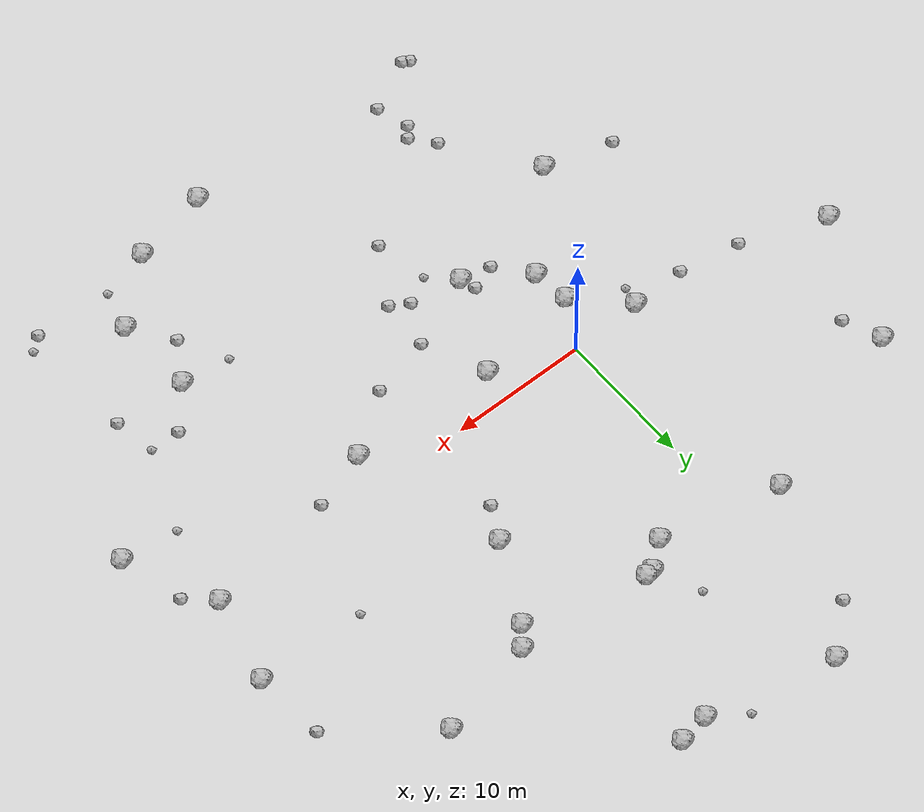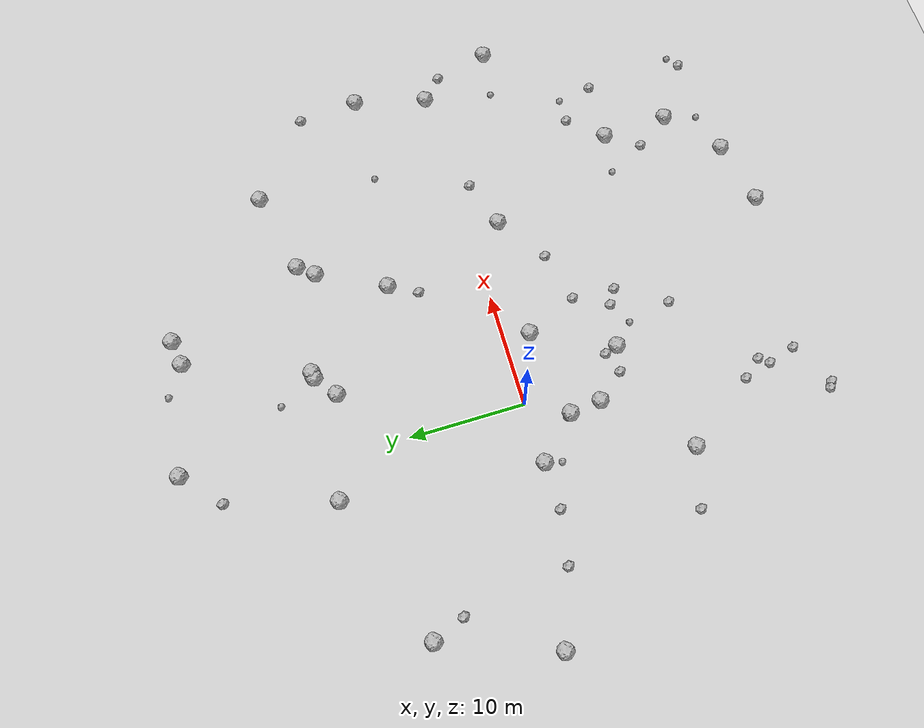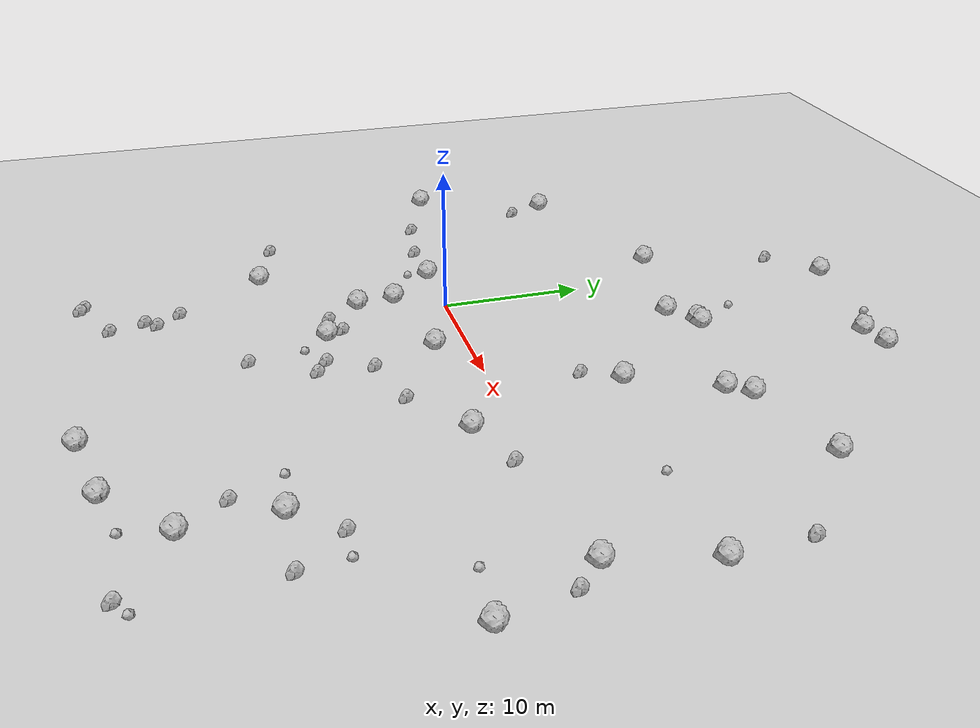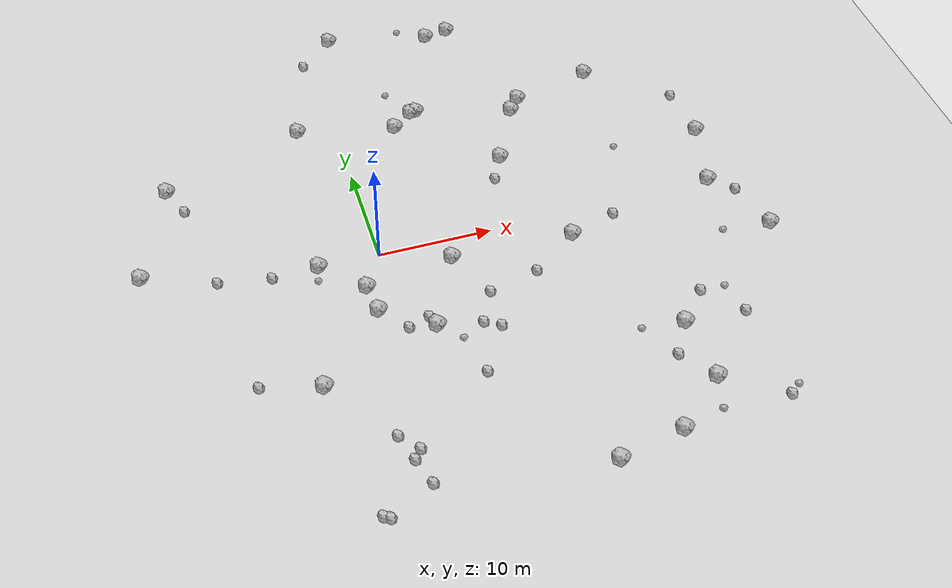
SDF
<sdf version="1.6">
 <world name="default">
  <include><uri>model://custom_ground</uri></include>
  <include><uri>model://sun</uri></include>
  <model name="rock1_0_0">
   <include><uri>model://rock1</uri><pose>5.3826163971432095 14.833915460122896 0.5 0 0 0</pose></include>
  </model>
  <model name="rock1_0_1">
   <include><uri>model://rock1</uri><pose>30.447518244006694 0.13891803665527291 0.5 0 0 0</pose></include>
  </model>
  <model name="rock1_0_2">
   <include><uri>model://rock1</uri><pose>2.5898749776114087 -8.997922072015974 0.5 0 0 0</pose></include>
  </model>
  <model name="rock1_0_3">
   <include><uri>model://rock1</uri><pose>22.018661945251147 -14.518125749165494 0.5 0 0 0</pose></include>
  </model>
  <model name="rock1_0_4">
   <include><uri>model://rock1</uri><pose>11.738256432796184 26.758494028316434 0.5 0 0 0</pose></include>
  </model>
  <model name="rock1_0_5">
   <include><uri>model://rock1</uri><pose>24.889400565742783 17.042585949610256 0.5 0 0 0</pose></include>
  </model>
  <model name="rock1_0_6">
   <include><uri>model://rock1</uri><pose>13.534504679959774 8.24101669516186 0.5 0 0 0</pose></include>
  </model>
  <model name="rock1_0_7">
   <include><uri>model://rock1</uri><pose>12.137205227243975 -25.386994723828195 0.5 0 0 0</pose></include>
  </model>
  <model name="rock1_0_8">
   <include><uri>model://rock1</uri><pose>32.02152474551937 6.439862818495428 0.5 0 0 0</pose></include>
  </model>
  <model name="rock1_0_9">
   <include><uri>model://rock1</uri><pose>13.982483947517053 27.139125043588002 0.5 0 0 0</pose></include>
  </model>
  <model name="rock1_0_10">
   <include><uri>model://rock1</uri><pose>22.27124170972136 -20.355734318314838 0.5 0 0 0</pose></include>
  </model>
  <model name="rock1_0_11">
   <include><uri>model://rock1</uri><pose>2.357629220583899 28.84419347674512 0.5 0 0 0</pose></include>
  </model>
  <model name="rock1_0_12">
   <include><uri>model://rock1</uri><pose>33.480842824594355 -6.354458076451795 0.5 0 0 0</pose></include>
  </model>
  <model name="rock1_0_13">
   <include><uri>model://rock1</uri><pose>-1.5949487735709234 -6.103101429644116 0.5 0 0 0</pose></include>
  </model>
  <model name="rock1_0_14">
   <include><uri>model://rock1</uri><pose>-16.18035129490665 12.500910345900515 0.5 0 0 0</pose></include>
  </model>
  <model name="rock1_0_15">
   <include><uri>model://rock1</uri><pose>17.565046872009702 15.384390584599615 0.5 0 0 0</pose></include>
  </model>
  <model name="rock1_0_16">
   <include><uri>model://rock1</uri><pose>-1.8895999373850003 -3.390053762345083 0.5 0 0 0</pose></include>
  </model>
  <model name="rock1_0_17">
   <include><uri>model://rock1</uri><pose>16.571297318726735 -2.6725973638123364 0.5 0 0 0</pose></include>
  </model>
  <model name="rock1_0_18">
   <include><uri>model://rock1</uri><pose>-5.239724703203688 -0.050935826409460816 0.5 0 0 0</pose></include>
  </model>
  <model name="rock1_0_19">
   <include><uri>model://rock1</uri><pose>17.80412472943207 -24.222778481294007 0.5 0 0 0</pose></include>
  </model>
  <model name="rock1_0_20">
   <include><uri>model://rock1</uri><pose>-7.593553679781337 -12.412526889327815 0.5 0 0 0</pose></include>
  </model>
  <model name="rock1_0_21">
   <include><uri>model://rock1</uri><pose>-3.3933310219554578 16.802599127154046 0.5 0 0 0</pose></include>
  </model>
  <model name="rock1_0_22">
   <include><uri>model://rock1</uri><pose>7.298195084800231 16.321862817131873 0.5 0 0 0</pose></include>
  </model>
  <model name="rock1_0_23">
   <include><uri>model://rock1</uri><pose>5.84447356881466 -2.2452999478449627 0.5 0 0 0</pose></include>
  </model>
  <model name="rock1_0_24">
   <include><uri>model://rock1</uri><pose>-19.816298962496326 2.9349189349045375 0.5 0 0 0</pose></include>
  </model>
  <model name="rock1_0_25">
   <include><uri>model://rock1</uri><pose>16.44552290676122 14.002501601590573 0.5 0 0 0</pose></include>
  </model>
  <model name="rock1_0_26">
   <include><uri>model://rock1</uri><pose>7.828417443083751 16.398951550373425 0.5 0 0 0</pose></include>
  </model>
  <model name="rock2_0_0">
   <include><uri>model://rock2</uri><pose>20.769088031303575 -1.3028528682348366 0.3 0 0 0</pose></include>
  </model>
  <model name="rock2_0_1">
   <include><uri>model://rock2</uri><pose>12.252481783612836 -5.68790336703433 0.3 0 0 0</pose></include>
  </model>
  <model name="rock2_0_2">
   <include><uri>model://rock2</uri><pose>-1.9813220653473635 -20.119825915808907 0.3 0 0 0</pose></include>
  </model>
  <model name="rock2_0_3">
   <include><uri>model://rock2</uri><pose>27.10365783653257 -23.571661268950912 0.3 0 0 0</pose></include>
  </model>
  <model name="rock2_0_4">
   <include><uri>model://rock2</uri><pose>31.61053136334582 11.6831301207839 0.3 0 0 0</pose></include>
  </model>
  <model name="rock2_0_5">
   <include><uri>model://rock2</uri><pose>12.211173855167011 5.818656164824681 0.3 0 0 0</pose></include>
  </model>
  <model name="rock2_0_6">
   <include><uri>model://rock2</uri><pose>32.27998359495686 -1.6168742194722228 0.3 0 0 0</pose></include>
  </model>
  <model name="rock2_0_7">
   <include><uri>model://rock2</uri><pose>0.31760263476304473 -8.519913160112822 0.3 0 0 0</pose></include>
  </model>
  <model name="rock2_0_8">
   <include><uri>model://rock2</uri><pose>7.795174416034964 -6.762517280145758 0.3 0 0 0</pose></include>
  </model>
  <model name="rock2_0_9">
   <include><uri>model://rock2</uri><pose>-15.080011776837994 9.752077347604626 0.3 0 0 0</pose></include>
  </model>
  <model name="rock2_0_10">
   <include><uri>model://rock2</uri><pose>27.228424582850728 -14.788774552205437 0.3 0 0 0</pose></include>
  </model>
  <model name="rock2_0_11">
   <include><uri>model://rock2</uri><pose>-3.32334583410098 -18.510501007391873 0.3 0 0 0</pose></include>
  </model>
  <model name="rock2_0_12">
   <include><uri>model://rock2</uri><pose>24.536811592186204 -11.68835426168149 0.3 0 0 0</pose></include>
  </model>
  <model name="rock2_0_13">
   <include><uri>model://rock2</uri><pose>2.183556464231348 -7.881472595733058 0.3 0 0 0</pose></include>
  </model>
  <model name="rock2_0_14">
   <include><uri>model://rock2</uri><pose>-12.562345230716774 -11.01128608196355 0.3 0 0 0</pose></include>
  </model>
  <model name="rock2_0_15">
   <include><uri>model://rock2</uri><pose>20.159737779902635 -17.379363077895054 0.3 0 0 0</pose></include>
  </model>
  <model name="rock2_0_16">
   <include><uri>model://rock2</uri><pose>-2.6413571710956987 -20.938865880234452 0.3 0 0 0</pose></include>
  </model>
  <model name="rock2_0_17">
   <include><uri>model://rock2</uri><pose>-9.27666162914747 -0.11095060411894053 0.3 0 0 0</pose></include>
  </model>
  <model name="rock2_0_18">
   <include><uri>model://rock2</uri><pose>-2.1006323928423463 -3.1407963141446054 0.3 0 0 0</pose></include>
  </model>
  <model name="rock2_0_19">
   <include><uri>model://rock2</uri><pose>-5.683190381064131 -25.288255724673718 0.3 0 0 0</pose></include>
  </model>
  <model name="rock2_0_20">
   <include><uri>model://rock2</uri><pose>5.058385165876079 -14.622472443625076 0.3 0 0 0</pose></include>
  </model>
  <model name="rock2_0_21">
   <include><uri>model://rock2</uri><pose>-0.8945777256669203 25.924378669265217 0.3 0 0 0</pose></include>
  </model>
  <model name="rock2_0_22">
   <include><uri>model://rock2</uri><pose>-13.764161152923513 0.6882229888067108 0.3 0 0 0</pose></include>
  </model>
  <model name="rock2_0_23">
   <include><uri>model://rock2</uri><pose>6.284273512704189 -9.699244818910248 0.3 0 0 0</pose></include>
  </model>
  <model name="rock2_0_24">
   <include><uri>model://rock2</uri><pose>7.589752302591542 -10.475553591488008 0.3 0 0 0</pose></include>
  </model>
  <model name="rock2_0_25">
   <include><uri>model://rock2</uri><pose>-1.9228808458546212 -23.32504609355527 0.3 0 0 0</pose></include>
  </model>
  <model name="rock2_0_26">
   <include><uri>model://rock2</uri><pose>-6.152529051250715 -25.00528854309053 0.3 0 0 0</pose></include>
  </model>
  <model name="rock3_0_0">
   <include><uri>model://rock3</uri><pose>28.081065351475914 -22.84034396658347 0.2 0 0 0</pose></include>
  </model>
  <model name="rock3_0_1">
   <include><uri>model://rock3</uri><pose>29.230410808589745 -5.8689867580851605 0.2 0 0 0</pose></include>
  </model>
  <model name="rock3_0_2">
   <include><uri>model://rock3</uri><pose>9.159643926815313 28.40282211108935 0.2 0 0 0</pose></include>
  </model>
  <model name="rock3_0_3">
   <include><uri>model://rock3</uri><pose>-5.626009920036184 -1.4977938695064204 0.2 0 0 0</pose></include>
  </model>
  <model name="rock3_0_4">
   <include><uri>model://rock3</uri><pose>18.352777240337836 -14.086205773006482 0.2 0 0 0</pose></include>
  </model>
  <model name="rock3_0_5">
   <include><uri>model://rock3</uri><pose>26.705259917280422 -11.799389815318296 0.2 0 0 0</pose></include>
  </model>
  <model name="rock3_0_6">
   <include><uri>model://rock3</uri><pose>4.266897134883109 -10.808405750458967 0.2 0 0 0</pose></include>
  </model>
  <model name="rock3_0_7">
   <include><uri>model://rock3</uri><pose>5.662910502363744 19.541997554999263 0.2 0 0 0</pose></include>
  </model>
  <model name="rock3_0_8">
   <include><uri>model://rock3</uri><pose>23.9309791468186 6.648569384758993 0.2 0 0 0</pose></include>
  </model>
  <model name="rock3_0_9">
   <include><uri>model://rock3</uri><pose>21.442989452478088 -23.302838587030408 0.2 0 0 0</pose></include>
  </model>
 </world>
</sdf>
